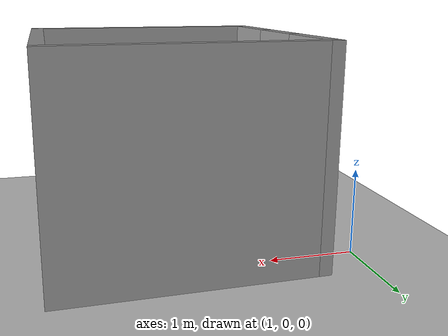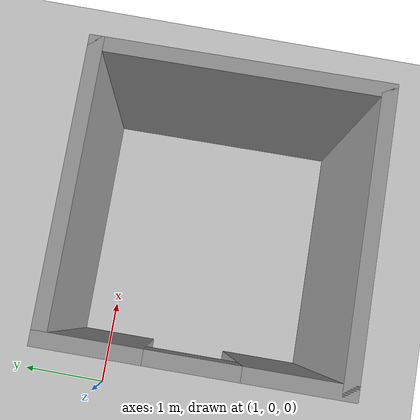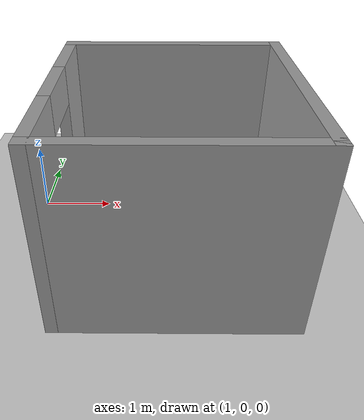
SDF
<sdf version="1.6">
 <world name="default">
  <light name="sun" type="directional">
   <pose>0 0 10 0 -0 0</pose>
   <diffuse>0.8 0.8 0.8 1</diffuse>
   <specular>0.2 0.2 0.2 1</specular>
   <attenuation>
    <range>1000</range>
    <constant>0.9</constant>
    <linear>0.01</linear>
    <quadratic>0.001</quadratic>
   </attenuation>
   <direction>-0.5 0.1 -0.9</direction>
  </light>
  <model name="ground_plane">
   <static>1</static>
   <link name="link">
    <collision name="collision">
     <geometry><plane><normal>0 0 1</normal><size>100 100</size></plane></geometry>
     <surface>
      <contact><collide_bitmask>65535</collide_bitmask></contact>
      <friction><ode><mu>100</mu><mu2>50</mu2></ode></friction>
     </surface>
    </collision>
    <visual name="visual">
     <cast_shadows>0</cast_shadows>
     <geometry><plane><normal>0 0 1</normal><size>100 100</size></plane></geometry>
     <material>
      <script><uri>file://media/materials/scripts/gazebo.material</uri><name>Gazebo/Grey</name></script>
     </material>
    </visual>
   </link>
  </model>
  <physics name="default_physics" default="0" type="ode">
   <real_time_update_rate>1000</real_time_update_rate>
   <max_step_size>0.001</max_step_size>
   <real_time_factor>1</real_time_factor>
   <ode>
    <solver>
     <type>quick</type>
     <iters>150</iters>
     <precon_iters>0</precon_iters>
     <sor>1.4</sor>
     <use_dynamic_moi_rescaling>1</use_dynamic_moi_rescaling>
    </solver>
    <constraints>
     <cfm>1e-05</cfm>
     <erp>0.2</erp>
     <contact_max_correcting_vel>2000</contact_max_correcting_vel>
     <contact_surface_layer>0.01</contact_surface_layer>
    </constraints>
   </ode>
  </physics>
  <scene><ambient>0.4 0.4 0.4 1</ambient><background>0.7 0.7 0.7 1</background><shadows>1</shadows></scene>
  <gravity>0 0 -9.8</gravity>
  <magnetic_field>6e-06 2.3e-05 -4.2e-05</magnetic_field>
  <atmosphere type="adiabatic"/>
  <spherical_coordinates>
   <surface_model>EARTH_WGS84</surface_model>
   <latitude_deg>0</latitude_deg>
   <longitude_deg>0</longitude_deg>
   <elevation>0</elevation>
   <heading_deg>0</heading_deg>
  </spherical_coordinates>
  <model name="3x3SmallRoom-1door">
   <pose>3 -1 0 0 0 -1.56</pose>
   <link name="Wall_12">
    <collision name="Wall_12_Collision">
     <geometry><box><size>3 0.15 2.5</size></box></geometry>
     <pose>0 0 1.25 0 -0 0</pose>
    </collision>
    <visual name="Wall_12_Visual">
     <pose>0 0 1.25 0 -0 0</pose>
     <geometry><box><size>3 0.15 2.5</size></box></geometry>
     <material>
      <script><uri>file://media/materials/scripts/gazebo.material</uri><name>Gazebo/Grey</name></script>
      <ambient>1 1 1 1</ambient>
     </material>
     <meta><layer>0</layer></meta>
    </visual>
    <pose>-1.425 0 0 0 -0 1.5708</pose>
   </link>
   <link name="Wall_13">
    <collision name="Wall_13_Collision">
     <geometry><box><size>3 0.15 2.5</size></box></geometry>
     <pose>0 0 1.25 0 -0 0</pose>
    </collision>
    <visual name="Wall_13_Visual">
     <pose>0 0 1.25 0 -0 0</pose>
     <geometry><box><size>3 0.15 2.5</size></box></geometry>
     <material>
      <script><uri>file://media/materials/scripts/gazebo.material</uri><name>Gazebo/Grey</name></script>
      <ambient>1 1 1 1</ambient>
     </material>
     <meta><layer>0</layer></meta>
    </visual>
    <pose>-0 1.425 0 0 -0 0</pose>
   </link>
   <link name="Wall_14">
    <collision name="Wall_14_Collision">
     <geometry><box><size>3 0.15 2.5</size></box></geometry>
     <pose>0 0 1.25 0 -0 0</pose>
    </collision>
    <visual name="Wall_14_Visual">
     <pose>0 0 1.25 0 -0 0</pose>
     <geometry><box><size>3 0.15 2.5</size></box></geometry>
     <material>
      <script><uri>file://media/materials/scripts/gazebo.material</uri><name>Gazebo/Grey</name></script>
      <ambient>1 1 1 1</ambient>
     </material>
     <meta><layer>0</layer></meta>
    </visual>
    <pose>1.425 0 0 0 -0 -1.5708</pose>
   </link>
   <link name="Wall_15">
    <pose>-0 -1.425 0 0 -0 3.14159</pose>
    <visual name="Wall_15_Visual_0">
     <pose>-0.967984 0 1.25 0 -0 0</pose>
     <geometry><box><size>1.06403 0.15 2.5</size></box></geometry>
     <material>
      <script><uri>file://media/materials/scripts/gazebo.material</uri><name>Gazebo/Grey</name></script>
      <ambient>1 1 1 1</ambient>
     </material>
     <meta><layer>0</layer></meta>
    </visual>
    <collision name="Wall_15_Collision_0">
     <geometry><box><size>1.06403 0.15 2.5</size></box></geometry>
     <pose>-0.967984 0 1.25 0 -0 0</pose>
    </collision>
    <visual name="Wall_15_Visual_1">
     <pose>0.982016 0 1.25 0 -0 0</pose>
     <geometry><box><size>1.03597 0.15 2.5</size></box></geometry>
     <material>
      <script><uri>file://media/materials/scripts/gazebo.material</uri><name>Gazebo/Grey</name></script>
      <ambient>1 1 1 1</ambient>
     </material>
     <meta><layer>0</layer></meta>
    </visual>
    <collision name="Wall_15_Collision_1">
     <geometry><box><size>1.03597 0.15 2.5</size></box></geometry>
     <pose>0.982016 0 1.25 0 -0 0</pose>
    </collision>
    <visual name="Wall_15_Visual_2">
     <pose>0.014033 0 2.25 0 -0 0</pose>
     <geometry><box><size>0.9 0.15 0.5</size></box></geometry>
     <material>
      <script><uri>file://media/materials/scripts/gazebo.material</uri><name>Gazebo/Grey</name></script>
      <ambient>1 1 1 1</ambient>
     </material>
     <meta><layer>0</layer></meta>
    </visual>
    <collision name="Wall_15_Collision_2">
     <geometry><box><size>0.9 0.15 0.5</size></box></geometry>
     <pose>0.014033 0 2.25 0 -0 0</pose>
    </collision>
   </link>
   <static>1</static>
  </model>
 </world>
</sdf>
